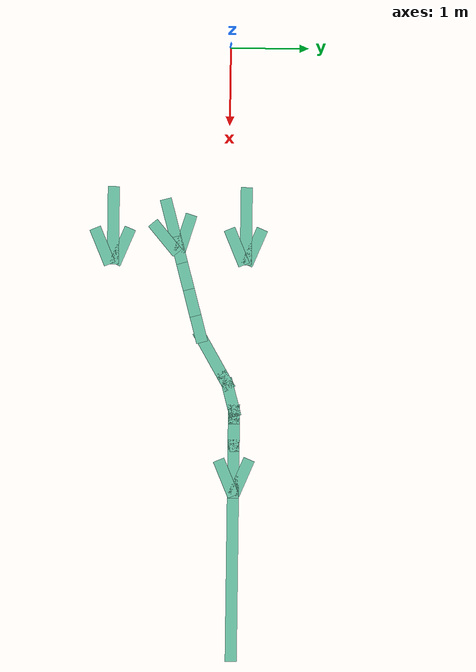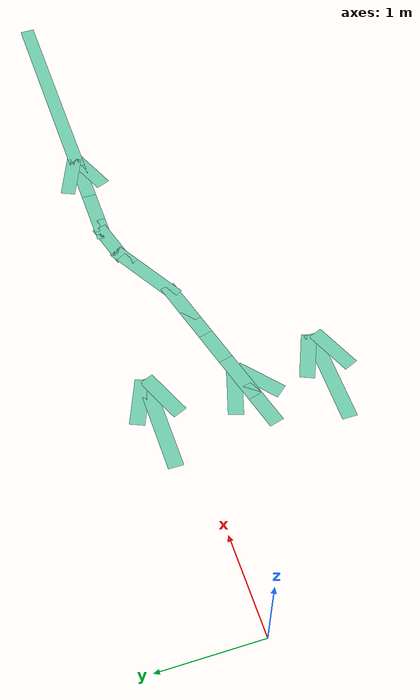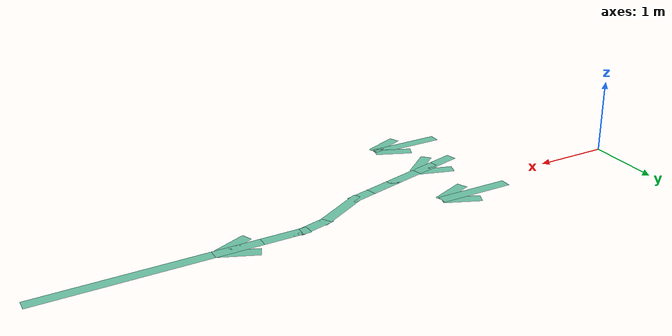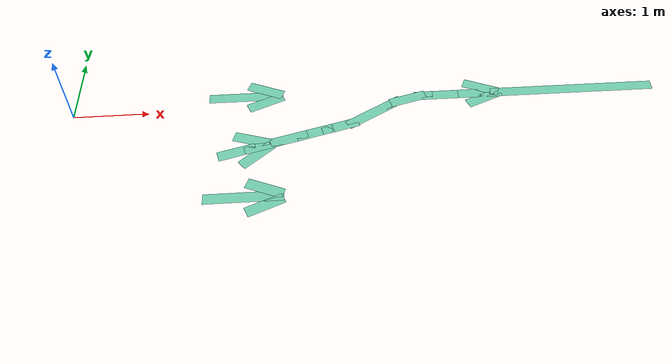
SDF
<sdf version="1.6">
 <model name="path_test">
  <link name="Wall_30_clone_clone_0_clone_clone_0_clone_clone">
   <pose>2.55639 0.336606 0 0 0 -0.4</pose>
   <inertial>
    <mass>1</mass>
    <inertia><ixx>1</ixx><ixy>0</ixy><ixz>0</ixz><iyy>1</iyy><iyz>0</iyz><izz>1</izz></inertia>
   </inertial>
   <visual name="Wall_30_Visual">
    <geometry><box><size>0.5 0.15 0</size></box></geometry>
    <material>
     <script><uri>file://media/materials/scripts/gazebo.material</uri><name>Gazebo/Grey</name></script>
     <ambient>0.435 0.796 0.675 1</ambient>
     <shader type="pixel"><normal_map>__default__</normal_map></shader>
     <diffuse>0.7 0.7 0.7 1</diffuse>
     <specular>0.01 0.01 0.01 1</specular>
     <emissive>0 0 0 1</emissive>
    </material>
    <meta><layer>0</layer></meta>
   </visual>
   <collision name="Wall_30_Collision">
    <geometry><box><size>0.5 0.15 0</size></box></geometry>
    <surface>
     <friction>
      <ode><mu>1</mu><mu2>1</mu2><fdir1>0 0 0</fdir1><slip1>0</slip1><slip2>0</slip2></ode>
      <torsional>
       <coefficient>1</coefficient>
       <patch_radius>0</patch_radius>
       <surface_radius>0</surface_radius>
       <use_patch_radius>1</use_patch_radius>
       <ode><slip>0</slip></ode>
      </torsional>
     </friction>
     <bounce><restitution_coefficient>0</restitution_coefficient><threshold>1e+06</threshold></bounce>
     <contact>
      <collide_without_contact>0</collide_without_contact>
      <collide_without_contact_bitmask>1</collide_without_contact_bitmask>
      <collide_bitmask>1</collide_bitmask>
      <ode>
       <soft_cfm>0</soft_cfm>
       <soft_erp>0.2</soft_erp>
       <kp>1e+13</kp>
       <kd>1</kd>
       <max_vel>0.01</max_vel>
       <min_depth>0</min_depth>
      </ode>
      <bullet>
       <split_impulse>1</split_impulse>
       <split_impulse_penetration_threshold>-0.01</split_impulse_penetration_threshold>
       <soft_cfm>0</soft_cfm>
       <soft_erp>0.2</soft_erp>
       <kp>1e+13</kp>
       <kd>1</kd>
      </bullet>
     </contact>
    </surface>
   </collision>
  </link>
  <link name="Wall_30_clone_clone_0_clone_clone_clone_0_clone">
   <pose>2.56492 -1.35959 0 0 0 -0.4</pose>
   <inertial>
    <mass>1</mass>
    <inertia><ixx>1</ixx><ixy>0</ixy><ixz>0</ixz><iyy>1</iyy><iyz>0</iyz><izz>1</izz></inertia>
   </inertial>
   <visual name="Wall_30_Visual">
    <geometry><box><size>0.5 0.15 0</size></box></geometry>
    <material>
     <script><uri>file://media/materials/scripts/gazebo.material</uri><name>Gazebo/Grey</name></script>
     <ambient>0.435 0.796 0.675 1</ambient>
     <shader type="pixel"><normal_map>__default__</normal_map></shader>
     <diffuse>0.7 0.7 0.7 1</diffuse>
     <specular>0.01 0.01 0.01 1</specular>
     <emissive>0 0 0 1</emissive>
    </material>
    <meta><layer>0</layer></meta>
   </visual>
   <collision name="Wall_30_Collision">
    <geometry><box><size>0.5 0.15 0</size></box></geometry>
    <surface>
     <friction>
      <ode><mu>1</mu><mu2>1</mu2><fdir1>0 0 0</fdir1><slip1>0</slip1><slip2>0</slip2></ode>
      <torsional>
       <coefficient>1</coefficient>
       <patch_radius>0</patch_radius>
       <surface_radius>0</surface_radius>
       <use_patch_radius>1</use_patch_radius>
       <ode><slip>0</slip></ode>
      </torsional>
     </friction>
     <bounce><restitution_coefficient>0</restitution_coefficient><threshold>1e+06</threshold></bounce>
     <contact>
      <collide_without_contact>0</collide_without_contact>
      <collide_without_contact_bitmask>1</collide_without_contact_bitmask>
      <collide_bitmask>1</collide_bitmask>
      <ode>
       <soft_cfm>0</soft_cfm>
       <soft_erp>0.2</soft_erp>
       <kp>1e+13</kp>
       <kd>1</kd>
       <max_vel>0.01</max_vel>
       <min_depth>0</min_depth>
      </ode>
      <bullet>
       <split_impulse>1</split_impulse>
       <split_impulse_penetration_threshold>-0.01</split_impulse_penetration_threshold>
       <soft_cfm>0</soft_cfm>
       <soft_erp>0.2</soft_erp>
       <kp>1e+13</kp>
       <kd>1</kd>
      </bullet>
     </contact>
    </surface>
   </collision>
  </link>
  <link name="Wall_30_clone_clone_0_clone_clone_clone_clone">
   <pose>5.51526 0.205404 0 0 0 -0.4</pose>
   <inertial>
    <mass>1</mass>
    <inertia><ixx>1</ixx><ixy>0</ixy><ixz>0</ixz><iyy>1</iyy><iyz>0</iyz><izz>1</izz></inertia>
   </inertial>
   <visual name="Wall_30_Visual">
    <geometry><box><size>0.5 0.15 0</size></box></geometry>
    <material>
     <script><uri>file://media/materials/scripts/gazebo.material</uri><name>Gazebo/Grey</name></script>
     <ambient>0.435 0.796 0.675 1</ambient>
     <shader type="pixel"><normal_map>__default__</normal_map></shader>
     <diffuse>0.7 0.7 0.7 1</diffuse>
     <specular>0.01 0.01 0.01 1</specular>
     <emissive>0 0 0 1</emissive>
    </material>
    <meta><layer>0</layer></meta>
   </visual>
   <collision name="Wall_30_Collision">
    <geometry><box><size>0.5 0.15 0</size></box></geometry>
    <surface>
     <friction>
      <ode><mu>1</mu><mu2>1</mu2><fdir1>0 0 0</fdir1><slip1>0</slip1><slip2>0</slip2></ode>
      <torsional>
       <coefficient>1</coefficient>
       <patch_radius>0</patch_radius>
       <surface_radius>0</surface_radius>
       <use_patch_radius>1</use_patch_radius>
       <ode><slip>0</slip></ode>
      </torsional>
     </friction>
     <bounce><restitution_coefficient>0</restitution_coefficient><threshold>1e+06</threshold></bounce>
     <contact>
      <collide_without_contact>0</collide_without_contact>
      <collide_without_contact_bitmask>1</collide_without_contact_bitmask>
      <collide_bitmask>1</collide_bitmask>
      <ode>
       <soft_cfm>0</soft_cfm>
       <soft_erp>0.2</soft_erp>
       <kp>1e+13</kp>
       <kd>1</kd>
       <max_vel>0.01</max_vel>
       <min_depth>0</min_depth>
      </ode>
      <bullet>
       <split_impulse>1</split_impulse>
       <split_impulse_penetration_threshold>-0.01</split_impulse_penetration_threshold>
       <soft_cfm>0</soft_cfm>
       <soft_erp>0.2</soft_erp>
       <kp>1e+13</kp>
       <kd>1</kd>
      </bullet>
     </contact>
    </surface>
   </collision>
  </link>
  <link name="Wall_30_clone_clone_clone_clone_0_clone">
   <pose>2.55934 0.108105 0 0 -0 0.4</pose>
   <inertial>
    <mass>1</mass>
    <inertia><ixx>1</ixx><ixy>0</ixy><ixz>0</ixz><iyy>1</iyy><iyz>0</iyz><izz>1</izz></inertia>
   </inertial>
   <visual name="Wall_30_Visual">
    <geometry><box><size>0.5 0.15 0</size></box></geometry>
    <material>
     <script><uri>file://media/materials/scripts/gazebo.material</uri><name>Gazebo/Grey</name></script>
     <ambient>0.435 0.796 0.675 1</ambient>
     <shader type="pixel"><normal_map>__default__</normal_map></shader>
     <diffuse>0.7 0.7 0.7 1</diffuse>
     <specular>0.01 0.01 0.01 1</specular>
     <emissive>0 0 0 1</emissive>
    </material>
    <meta><layer>0</layer></meta>
   </visual>
   <collision name="Wall_30_Collision">
    <geometry><box><size>0.5 0.15 0</size></box></geometry>
    <surface>
     <friction>
      <ode><mu>1</mu><mu2>1</mu2><fdir1>0 0 0</fdir1><slip1>0</slip1><slip2>0</slip2></ode>
      <torsional>
       <coefficient>1</coefficient>
       <patch_radius>0</patch_radius>
       <surface_radius>0</surface_radius>
       <use_patch_radius>1</use_patch_radius>
       <ode><slip>0</slip></ode>
      </torsional>
     </friction>
     <bounce><restitution_coefficient>0</restitution_coefficient><threshold>1e+06</threshold></bounce>
     <contact>
      <collide_without_contact>0</collide_without_contact>
      <collide_without_contact_bitmask>1</collide_without_contact_bitmask>
      <collide_bitmask>1</collide_bitmask>
      <ode>
       <soft_cfm>0</soft_cfm>
       <soft_erp>0.2</soft_erp>
       <kp>1e+13</kp>
       <kd>1</kd>
       <max_vel>0.01</max_vel>
       <min_depth>0</min_depth>
      </ode>
      <bullet>
       <split_impulse>1</split_impulse>
       <split_impulse_penetration_threshold>-0.01</split_impulse_penetration_threshold>
       <soft_cfm>0</soft_cfm>
       <soft_erp>0.2</soft_erp>
       <kp>1e+13</kp>
       <kd>1</kd>
      </bullet>
     </contact>
    </surface>
   </collision>
  </link>
  <link name="Wall_30_clone_clone_clone_clone_clone_0_clone">
   <pose>2.56822 -1.61865 0 0 -0 0.4</pose>
   <inertial>
    <mass>1</mass>
    <inertia><ixx>1</ixx><ixy>0</ixy><ixz>0</ixz><iyy>1</iyy><iyz>0</iyz><izz>1</izz></inertia>
   </inertial>
   <visual name="Wall_30_Visual">
    <geometry><box><size>0.5 0.15 0</size></box></geometry>
    <material>
     <script><uri>file://media/materials/scripts/gazebo.material</uri><name>Gazebo/Grey</name></script>
     <ambient>0.435 0.796 0.675 1</ambient>
     <shader type="pixel"><normal_map>__default__</normal_map></shader>
     <diffuse>0.7 0.7 0.7 1</diffuse>
     <specular>0.01 0.01 0.01 1</specular>
     <emissive>0 0 0 1</emissive>
    </material>
    <meta><layer>0</layer></meta>
   </visual>
   <collision name="Wall_30_Collision">
    <geometry><box><size>0.5 0.15 0</size></box></geometry>
    <surface>
     <friction>
      <ode><mu>1</mu><mu2>1</mu2><fdir1>0 0 0</fdir1><slip1>0</slip1><slip2>0</slip2></ode>
      <torsional>
       <coefficient>1</coefficient>
       <patch_radius>0</patch_radius>
       <surface_radius>0</surface_radius>
       <use_patch_radius>1</use_patch_radius>
       <ode><slip>0</slip></ode>
      </torsional>
     </friction>
     <bounce><restitution_coefficient>0</restitution_coefficient><threshold>1e+06</threshold></bounce>
     <contact>
      <collide_without_contact>0</collide_without_contact>
      <collide_without_contact_bitmask>1</collide_without_contact_bitmask>
      <collide_bitmask>1</collide_bitmask>
      <ode>
       <soft_cfm>0</soft_cfm>
       <soft_erp>0.2</soft_erp>
       <kp>1e+13</kp>
       <kd>1</kd>
       <max_vel>0.01</max_vel>
       <min_depth>0</min_depth>
      </ode>
      <bullet>
       <split_impulse>1</split_impulse>
       <split_impulse_penetration_threshold>-0.01</split_impulse_penetration_threshold>
       <soft_cfm>0</soft_cfm>
       <soft_erp>0.2</soft_erp>
       <kp>1e+13</kp>
       <kd>1</kd>
      </bullet>
     </contact>
    </surface>
   </collision>
  </link>
  <link name="Wall_30_clone_clone_clone_clone_clone_clone">
   <pose>5.52735 0.006886 0 0 -0 0.4</pose>
   <inertial>
    <mass>1</mass>
    <inertia><ixx>1</ixx><ixy>0</ixy><ixz>0</ixz><iyy>1</iyy><iyz>0</iyz><izz>1</izz></inertia>
   </inertial>
   <visual name="Wall_30_Visual">
    <geometry><box><size>0.5 0.15 0</size></box></geometry>
    <material>
     <script><uri>file://media/materials/scripts/gazebo.material</uri><name>Gazebo/Grey</name></script>
     <ambient>0.435 0.796 0.675 1</ambient>
     <shader type="pixel"><normal_map>__default__</normal_map></shader>
     <diffuse>0.7 0.7 0.7 1</diffuse>
     <specular>0.01 0.01 0.01 1</specular>
     <emissive>0 0 0 1</emissive>
    </material>
    <meta><layer>0</layer></meta>
   </visual>
   <collision name="Wall_30_Collision">
    <geometry><box><size>0.5 0.15 0</size></box></geometry>
    <surface>
     <friction>
      <ode><mu>1</mu><mu2>1</mu2><fdir1>0 0 0</fdir1><slip1>0</slip1><slip2>0</slip2></ode>
      <torsional>
       <coefficient>1</coefficient>
       <patch_radius>0</patch_radius>
       <surface_radius>0</surface_radius>
       <use_patch_radius>1</use_patch_radius>
       <ode><slip>0</slip></ode>
      </torsional>
     </friction>
     <bounce><restitution_coefficient>0</restitution_coefficient><threshold>1e+06</threshold></bounce>
     <contact>
      <collide_without_contact>0</collide_without_contact>
      <collide_without_contact_bitmask>1</collide_without_contact_bitmask>
      <collide_bitmask>1</collide_bitmask>
      <ode>
       <soft_cfm>0</soft_cfm>
       <soft_erp>0.2</soft_erp>
       <kp>1e+13</kp>
       <kd>1</kd>
       <max_vel>0.01</max_vel>
       <min_depth>0</min_depth>
      </ode>
      <bullet>
       <split_impulse>1</split_impulse>
       <split_impulse_penetration_threshold>-0.01</split_impulse_penetration_threshold>
       <soft_cfm>0</soft_cfm>
       <soft_erp>0.2</soft_erp>
       <kp>1e+13</kp>
       <kd>1</kd>
      </bullet>
     </contact>
    </surface>
   </collision>
  </link>
  <link name="Wall_30_clone_clone_clone_clone_clone_clone_clone">
   <pose>2.45221 -0.812896 0 0 -0 0.7</pose>
   <inertial>
    <mass>1</mass>
    <inertia><ixx>1</ixx><ixy>0</ixy><ixz>0</ixz><iyy>1</iyy><iyz>0</iyz><izz>1</izz></inertia>
   </inertial>
   <visual name="Wall_30_Visual">
    <geometry><box><size>0.5 0.15 0</size></box></geometry>
    <material>
     <script><uri>file://media/materials/scripts/gazebo.material</uri><name>Gazebo/Grey</name></script>
     <ambient>0.435 0.796 0.675 1</ambient>
     <shader type="pixel"><normal_map>__default__</normal_map></shader>
     <diffuse>0.7 0.7 0.7 1</diffuse>
     <specular>0.01 0.01 0.01 1</specular>
     <emissive>0 0 0 1</emissive>
    </material>
    <meta><layer>0</layer></meta>
   </visual>
   <collision name="Wall_30_Collision">
    <geometry><box><size>0.5 0.15 0</size></box></geometry>
    <surface>
     <friction>
      <ode><mu>1</mu><mu2>1</mu2><fdir1>0 0 0</fdir1><slip1>0</slip1><slip2>0</slip2></ode>
      <torsional>
       <coefficient>1</coefficient>
       <patch_radius>0</patch_radius>
       <surface_radius>0</surface_radius>
       <use_patch_radius>1</use_patch_radius>
       <ode><slip>0</slip></ode>
      </torsional>
     </friction>
     <bounce><restitution_coefficient>0</restitution_coefficient><threshold>1e+06</threshold></bounce>
     <contact>
      <collide_without_contact>0</collide_without_contact>
      <collide_without_contact_bitmask>1</collide_without_contact_bitmask>
      <collide_bitmask>1</collide_bitmask>
      <ode>
       <soft_cfm>0</soft_cfm>
       <soft_erp>0.2</soft_erp>
       <kp>1e+13</kp>
       <kd>1</kd>
       <max_vel>0.01</max_vel>
       <min_depth>0</min_depth>
      </ode>
      <bullet>
       <split_impulse>1</split_impulse>
       <split_impulse_penetration_threshold>-0.01</split_impulse_penetration_threshold>
       <soft_cfm>0</soft_cfm>
       <soft_erp>0.2</soft_erp>
       <kp>1e+13</kp>
       <kd>1</kd>
      </bullet>
     </contact>
    </surface>
   </collision>
  </link>
  <link name="Wall_30_clone_clone_clone_clone_clone_clone_clone_0">
   <pose>2.38992 -0.552326 0 0 0 -0.3</pose>
   <inertial>
    <mass>1</mass>
    <inertia><ixx>1</ixx><ixy>0</ixy><ixz>0</ixz><iyy>1</iyy><iyz>0</iyz><izz>1</izz></inertia>
   </inertial>
   <visual name="Wall_30_Visual">
    <geometry><box><size>0.5 0.15 0</size></box></geometry>
    <material>
     <script><uri>file://media/materials/scripts/gazebo.material</uri><name>Gazebo/Grey</name></script>
     <ambient>0.435 0.796 0.675 1</ambient>
     <shader type="pixel"><normal_map>__default__</normal_map></shader>
     <diffuse>0.7 0.7 0.7 1</diffuse>
     <specular>0.01 0.01 0.01 1</specular>
     <emissive>0 0 0 1</emissive>
    </material>
    <meta><layer>0</layer></meta>
   </visual>
   <collision name="Wall_30_Collision">
    <geometry><box><size>0.5 0.15 0</size></box></geometry>
    <surface>
     <friction>
      <ode><mu>1</mu><mu2>1</mu2><fdir1>0 0 0</fdir1><slip1>0</slip1><slip2>0</slip2></ode>
      <torsional>
       <coefficient>1</coefficient>
       <patch_radius>0</patch_radius>
       <surface_radius>0</surface_radius>
       <use_patch_radius>1</use_patch_radius>
       <ode><slip>0</slip></ode>
      </torsional>
     </friction>
     <bounce><restitution_coefficient>0</restitution_coefficient><threshold>1e+06</threshold></bounce>
     <contact>
      <collide_without_contact>0</collide_without_contact>
      <collide_without_contact_bitmask>1</collide_without_contact_bitmask>
      <collide_bitmask>1</collide_bitmask>
      <ode>
       <soft_cfm>0</soft_cfm>
       <soft_erp>0.2</soft_erp>
       <kp>1e+13</kp>
       <kd>1</kd>
       <max_vel>0.01</max_vel>
       <min_depth>0</min_depth>
      </ode>
      <bullet>
       <split_impulse>1</split_impulse>
       <split_impulse_penetration_threshold>-0.01</split_impulse_penetration_threshold>
       <soft_cfm>0</soft_cfm>
       <soft_erp>0.2</soft_erp>
       <kp>1e+13</kp>
       <kd>1</kd>
      </bullet>
     </contact>
    </surface>
   </collision>
  </link>
  <link name="Wall_34_clone_clone_0_clone_clone">
   <pose>2.29032 0.225762 0 0 -0 0</pose>
   <visual name="Wall_34_Visual">
    <geometry><box><size>1 0.15 0</size></box></geometry>
    <material>
     <script><uri>file://media/materials/scripts/gazebo.material</uri><name>Gazebo/Grey</name></script>
     <ambient>0.435294 0.796078 0.67451 1</ambient>
     <shader type="pixel"/>
    </material>
    <meta><layer>0</layer></meta>
   </visual>
   <collision name="Wall_34_Collision">
    <geometry><box><size>1 0.15 0</size></box></geometry>
    <surface>
     <friction>
      <ode><mu>1</mu><mu2>1</mu2><fdir1>0 0 0</fdir1><slip1>0</slip1><slip2>0</slip2></ode>
      <torsional>
       <coefficient>1</coefficient>
       <patch_radius>0</patch_radius>
       <surface_radius>0</surface_radius>
       <use_patch_radius>1</use_patch_radius>
       <ode><slip>0</slip></ode>
      </torsional>
     </friction>
     <bounce><restitution_coefficient>0</restitution_coefficient><threshold>1e+06</threshold></bounce>
     <contact>
      <collide_without_contact>0</collide_without_contact>
      <collide_without_contact_bitmask>1</collide_without_contact_bitmask>
      <collide_bitmask>1</collide_bitmask>
      <ode>
       <soft_cfm>0</soft_cfm>
       <soft_erp>0.2</soft_erp>
       <kp>1e+13</kp>
       <kd>1</kd>
       <max_vel>0.01</max_vel>
       <min_depth>0</min_depth>
      </ode>
      <bullet>
       <split_impulse>1</split_impulse>
       <split_impulse_penetration_threshold>-0.01</split_impulse_penetration_threshold>
       <soft_cfm>0</soft_cfm>
       <soft_erp>0.2</soft_erp>
       <kp>1e+13</kp>
       <kd>1</kd>
      </bullet>
     </contact>
    </surface>
   </collision>
  </link>
  <link name="Wall_34_clone_clone_clone_clone">
   <pose>2.29981 -1.48217 0 0 -0 0</pose>
   <visual name="Wall_34_Visual">
    <geometry><box><size>1 0.15 0</size></box></geometry>
    <material>
     <script><uri>file://media/materials/scripts/gazebo.material</uri><name>Gazebo/Grey</name></script>
     <ambient>0.435294 0.796078 0.67451 1</ambient>
     <shader type="pixel"/>
    </material>
    <meta><layer>0</layer></meta>
   </visual>
   <collision name="Wall_34_Collision">
    <geometry><box><size>1 0.15 0</size></box></geometry>
    <surface>
     <friction>
      <ode><mu>1</mu><mu2>1</mu2><fdir1>0 0 0</fdir1><slip1>0</slip1><slip2>0</slip2></ode>
      <torsional>
       <coefficient>1</coefficient>
       <patch_radius>0</patch_radius>
       <surface_radius>0</surface_radius>
       <use_patch_radius>1</use_patch_radius>
       <ode><slip>0</slip></ode>
      </torsional>
     </friction>
     <bounce><restitution_coefficient>0</restitution_coefficient><threshold>1e+06</threshold></bounce>
     <contact>
      <collide_without_contact>0</collide_without_contact>
      <collide_without_contact_bitmask>1</collide_without_contact_bitmask>
      <collide_bitmask>1</collide_bitmask>
      <ode>
       <soft_cfm>0</soft_cfm>
       <soft_erp>0.2</soft_erp>
       <kp>1e+13</kp>
       <kd>1</kd>
       <max_vel>0.01</max_vel>
       <min_depth>0</min_depth>
      </ode>
      <bullet>
       <split_impulse>1</split_impulse>
       <split_impulse_penetration_threshold>-0.01</split_impulse_penetration_threshold>
       <soft_cfm>0</soft_cfm>
       <soft_erp>0.2</soft_erp>
       <kp>1e+13</kp>
       <kd>1</kd>
      </bullet>
     </contact>
    </surface>
   </collision>
  </link>
  <link name="Wall_36">
   <pose>2.19447 -0.748507 0 0 -0 0.261799</pose>
   <visual name="Wall_36_Visual">
    <geometry><box><size>0.5 0.15 0</size></box></geometry>
    <material>
     <script><uri>file://media/materials/scripts/gazebo.material</uri><name>Gazebo/Grey</name></script>
     <ambient>0.435294 0.796078 0.67451 1</ambient>
     <shader type="pixel"/>
    </material>
    <meta><layer>0</layer></meta>
   </visual>
   <collision name="Wall_36_Collision">
    <geometry><box><size>0.5 0.15 0</size></box></geometry>
    <surface>
     <friction>
      <ode><mu>1</mu><mu2>1</mu2><fdir1>0 0 0</fdir1><slip1>0</slip1><slip2>0</slip2></ode>
      <torsional>
       <coefficient>1</coefficient>
       <patch_radius>0</patch_radius>
       <surface_radius>0</surface_radius>
       <use_patch_radius>1</use_patch_radius>
       <ode><slip>0</slip></ode>
      </torsional>
     </friction>
     <bounce><restitution_coefficient>0</restitution_coefficient><threshold>1e+06</threshold></bounce>
     <contact>
      <collide_without_contact>0</collide_without_contact>
      <collide_without_contact_bitmask>1</collide_without_contact_bitmask>
      <collide_bitmask>1</collide_bitmask>
      <ode>
       <soft_cfm>0</soft_cfm>
       <soft_erp>0.2</soft_erp>
       <kp>1e+13</kp>
       <kd>1</kd>
       <max_vel>0.01</max_vel>
       <min_depth>0</min_depth>
      </ode>
      <bullet>
       <split_impulse>1</split_impulse>
       <split_impulse_penetration_threshold>-0.01</split_impulse_penetration_threshold>
       <soft_cfm>0</soft_cfm>
       <soft_erp>0.2</soft_erp>
       <kp>1e+13</kp>
       <kd>1</kd>
      </bullet>
     </contact>
    </surface>
   </collision>
  </link>
  <link name="Wall_37">
   <pose>2.53254 -0.65792 0 0 -0 0.261799</pose>
   <visual name="Wall_37_Visual">
    <geometry><box><size>0.5 0.15 0</size></box></geometry>
    <material>
     <script><uri>file://media/materials/scripts/gazebo.material</uri><name>Gazebo/Grey</name></script>
     <ambient>0.435294 0.796078 0.67451 1</ambient>
     <shader type="pixel"/>
    </material>
    <meta><layer>0</layer></meta>
   </visual>
   <collision name="Wall_37_Collision">
    <geometry><box><size>0.5 0.15 0</size></box></geometry>
    <surface>
     <friction>
      <ode><mu>1</mu><mu2>1</mu2><fdir1>0 0 0</fdir1><slip1>0</slip1><slip2>0</slip2></ode>
      <torsional>
       <coefficient>1</coefficient>
       <patch_radius>0</patch_radius>
       <surface_radius>0</surface_radius>
       <use_patch_radius>1</use_patch_radius>
       <ode><slip>0</slip></ode>
      </torsional>
     </friction>
     <bounce><restitution_coefficient>0</restitution_coefficient><threshold>1e+06</threshold></bounce>
     <contact>
      <collide_without_contact>0</collide_without_contact>
      <collide_without_contact_bitmask>1</collide_without_contact_bitmask>
      <collide_bitmask>1</collide_bitmask>
      <ode>
       <soft_cfm>0</soft_cfm>
       <soft_erp>0.2</soft_erp>
       <kp>1e+13</kp>
       <kd>1</kd>
       <max_vel>0.01</max_vel>
       <min_depth>0</min_depth>
      </ode>
      <bullet>
       <split_impulse>1</split_impulse>
       <split_impulse_penetration_threshold>-0.01</split_impulse_penetration_threshold>
       <soft_cfm>0</soft_cfm>
       <soft_erp>0.2</soft_erp>
       <kp>1e+13</kp>
       <kd>1</kd>
      </bullet>
     </contact>
    </surface>
   </collision>
  </link>
  <link name="Wall_38">
   <pose>2.87062 -0.567333 0 0 -0 0.261799</pose>
   <visual name="Wall_38_Visual">
    <geometry><box><size>0.5 0.15 0</size></box></geometry>
    <material>
     <script><uri>file://media/materials/scripts/gazebo.material</uri><name>Gazebo/Grey</name></script>
     <ambient>0.435294 0.796078 0.67451 1</ambient>
     <shader type="pixel"/>
    </material>
    <meta><layer>0</layer></meta>
   </visual>
   <collision name="Wall_38_Collision">
    <geometry><box><size>0.5 0.15 0</size></box></geometry>
    <surface>
     <friction>
      <ode><mu>1</mu><mu2>1</mu2><fdir1>0 0 0</fdir1><slip1>0</slip1><slip2>0</slip2></ode>
      <torsional>
       <coefficient>1</coefficient>
       <patch_radius>0</patch_radius>
       <surface_radius>0</surface_radius>
       <use_patch_radius>1</use_patch_radius>
       <ode><slip>0</slip></ode>
      </torsional>
     </friction>
     <bounce><restitution_coefficient>0</restitution_coefficient><threshold>1e+06</threshold></bounce>
     <contact>
      <collide_without_contact>0</collide_without_contact>
      <collide_without_contact_bitmask>1</collide_without_contact_bitmask>
      <collide_bitmask>1</collide_bitmask>
      <ode>
       <soft_cfm>0</soft_cfm>
       <soft_erp>0.2</soft_erp>
       <kp>1e+13</kp>
       <kd>1</kd>
       <max_vel>0.01</max_vel>
       <min_depth>0</min_depth>
      </ode>
      <bullet>
       <split_impulse>1</split_impulse>
       <split_impulse_penetration_threshold>-0.01</split_impulse_penetration_threshold>
       <soft_cfm>0</soft_cfm>
       <soft_erp>0.2</soft_erp>
       <kp>1e+13</kp>
       <kd>1</kd>
      </bullet>
     </contact>
    </surface>
   </collision>
  </link>
  <link name="Wall_39">
   <pose>3.20869 -0.476747 0 0 -0 0.261799</pose>
   <visual name="Wall_39_Visual">
    <geometry><box><size>0.5 0.15 0</size></box></geometry>
    <material>
     <script><uri>file://media/materials/scripts/gazebo.material</uri><name>Gazebo/Grey</name></script>
     <ambient>0.435294 0.796078 0.67451 1</ambient>
     <shader type="pixel"/>
    </material>
    <meta><layer>0</layer></meta>
   </visual>
   <collision name="Wall_39_Collision">
    <geometry><box><size>0.5 0.15 0</size></box></geometry>
    <surface>
     <friction>
      <ode><mu>1</mu><mu2>1</mu2><fdir1>0 0 0</fdir1><slip1>0</slip1><slip2>0</slip2></ode>
      <torsional>
       <coefficient>1</coefficient>
       <patch_radius>0</patch_radius>
       <surface_radius>0</surface_radius>
       <use_patch_radius>1</use_patch_radius>
       <ode><slip>0</slip></ode>
      </torsional>
     </friction>
     <bounce><restitution_coefficient>0</restitution_coefficient><threshold>1e+06</threshold></bounce>
     <contact>
      <collide_without_contact>0</collide_without_contact>
      <collide_without_contact_bitmask>1</collide_without_contact_bitmask>
      <collide_bitmask>1</collide_bitmask>
      <ode>
       <soft_cfm>0</soft_cfm>
       <soft_erp>0.2</soft_erp>
       <kp>1e+13</kp>
       <kd>1</kd>
       <max_vel>0.01</max_vel>
       <min_depth>0</min_depth>
      </ode>
      <bullet>
       <split_impulse>1</split_impulse>
       <split_impulse_penetration_threshold>-0.01</split_impulse_penetration_threshold>
       <soft_cfm>0</soft_cfm>
       <soft_erp>0.2</soft_erp>
       <kp>1e+13</kp>
       <kd>1</kd>
      </bullet>
     </contact>
    </surface>
   </collision>
  </link>
  <link name="Wall_40">
   <pose>3.54676 -0.38616 0 0 -0 0.261799</pose>
   <visual name="Wall_40_Visual">
    <geometry><box><size>0.5 0.15 0</size></box></geometry>
    <material>
     <script><uri>file://media/materials/scripts/gazebo.material</uri><name>Gazebo/Grey</name></script>
     <ambient>0.435294 0.796078 0.67451 1</ambient>
     <shader type="pixel"/>
    </material>
    <meta><layer>0</layer></meta>
   </visual>
   <collision name="Wall_40_Collision">
    <geometry><box><size>0.5 0.15 0</size></box></geometry>
    <surface>
     <friction>
      <ode><mu>1</mu><mu2>1</mu2><fdir1>0 0 0</fdir1><slip1>0</slip1><slip2>0</slip2></ode>
      <torsional>
       <coefficient>1</coefficient>
       <patch_radius>0</patch_radius>
       <surface_radius>0</surface_radius>
       <use_patch_radius>1</use_patch_radius>
       <ode><slip>0</slip></ode>
      </torsional>
     </friction>
     <bounce><restitution_coefficient>0</restitution_coefficient><threshold>1e+06</threshold></bounce>
     <contact>
      <collide_without_contact>0</collide_without_contact>
      <collide_without_contact_bitmask>1</collide_without_contact_bitmask>
      <collide_bitmask>1</collide_bitmask>
      <ode>
       <soft_cfm>0</soft_cfm>
       <soft_erp>0.2</soft_erp>
       <kp>1e+13</kp>
       <kd>1</kd>
       <max_vel>0.01</max_vel>
       <min_depth>0</min_depth>
      </ode>
      <bullet>
       <split_impulse>1</split_impulse>
       <split_impulse_penetration_threshold>-0.01</split_impulse_penetration_threshold>
       <soft_cfm>0</soft_cfm>
       <soft_erp>0.2</soft_erp>
       <kp>1e+13</kp>
       <kd>1</kd>
      </bullet>
     </contact>
    </surface>
   </collision>
  </link>
  <link name="Wall_41">
   <pose>3.97561 -0.190867 0 0 -0 0.523599</pose>
   <visual name="Wall_41_Visual">
    <geometry><box><size>0.75 0.15 0</size></box></geometry>
    <material>
     <script><uri>file://media/materials/scripts/gazebo.material</uri><name>Gazebo/Grey</name></script>
     <ambient>0.435294 0.796078 0.67451 1</ambient>
     <shader type="pixel"/>
    </material>
    <meta><layer>0</layer></meta>
   </visual>
   <collision name="Wall_41_Collision">
    <geometry><box><size>0.75 0.15 0</size></box></geometry>
    <surface>
     <friction>
      <ode><mu>1</mu><mu2>1</mu2><fdir1>0 0 0</fdir1><slip1>0</slip1><slip2>0</slip2></ode>
      <torsional>
       <coefficient>1</coefficient>
       <patch_radius>0</patch_radius>
       <surface_radius>0</surface_radius>
       <use_patch_radius>1</use_patch_radius>
       <ode><slip>0</slip></ode>
      </torsional>
     </friction>
     <bounce><restitution_coefficient>0</restitution_coefficient><threshold>1e+06</threshold></bounce>
     <contact>
      <collide_without_contact>0</collide_without_contact>
      <collide_without_contact_bitmask>1</collide_without_contact_bitmask>
      <collide_bitmask>1</collide_bitmask>
      <ode>
       <soft_cfm>0</soft_cfm>
       <soft_erp>0.2</soft_erp>
       <kp>1e+13</kp>
       <kd>1</kd>
       <max_vel>0.01</max_vel>
       <min_depth>0</min_depth>
      </ode>
      <bullet>
       <split_impulse>1</split_impulse>
       <split_impulse_penetration_threshold>-0.01</split_impulse_penetration_threshold>
       <soft_cfm>0</soft_cfm>
       <soft_erp>0.2</soft_erp>
       <kp>1e+13</kp>
       <kd>1</kd>
      </bullet>
     </contact>
    </surface>
   </collision>
  </link>
  <link name="Wall_42">
   <pose>4.27872 -0.015867 0 0 -0 0.523599</pose>
   <visual name="Wall_42_Visual">
    <geometry><box><size>0.25 0.15 0</size></box></geometry>
    <material>
     <script><uri>file://media/materials/scripts/gazebo.material</uri><name>Gazebo/Grey</name></script>
     <ambient>0.435294 0.796078 0.67451 1</ambient>
     <shader type="pixel"/>
    </material>
    <meta><layer>0</layer></meta>
   </visual>
   <collision name="Wall_42_Collision">
    <geometry><box><size>0.25 0.15 0</size></box></geometry>
    <surface>
     <friction>
      <ode><mu>1</mu><mu2>1</mu2><fdir1>0 0 0</fdir1><slip1>0</slip1><slip2>0</slip2></ode>
      <torsional>
       <coefficient>1</coefficient>
       <patch_radius>0</patch_radius>
       <surface_radius>0</surface_radius>
       <use_patch_radius>1</use_patch_radius>
       <ode><slip>0</slip></ode>
      </torsional>
     </friction>
     <bounce><restitution_coefficient>0</restitution_coefficient><threshold>1e+06</threshold></bounce>
     <contact>
      <collide_without_contact>0</collide_without_contact>
      <collide_without_contact_bitmask>1</collide_without_contact_bitmask>
      <collide_bitmask>1</collide_bitmask>
      <ode>
       <soft_cfm>0</soft_cfm>
       <soft_erp>0.2</soft_erp>
       <kp>1e+13</kp>
       <kd>1</kd>
       <max_vel>0.01</max_vel>
       <min_depth>0</min_depth>
      </ode>
      <bullet>
       <split_impulse>1</split_impulse>
       <split_impulse_penetration_threshold>-0.01</split_impulse_penetration_threshold>
       <soft_cfm>0</soft_cfm>
       <soft_erp>0.2</soft_erp>
       <kp>1e+13</kp>
       <kd>1</kd>
      </bullet>
     </contact>
    </surface>
   </collision>
  </link>
  <link name="Wall_43">
   <pose>4.49106 0.054427 0 0 -0 0.261799</pose>
   <visual name="Wall_43_Visual">
    <geometry><box><size>0.5 0.15 0</size></box></geometry>
    <material>
     <script><uri>file://media/materials/scripts/gazebo.material</uri><name>Gazebo/Grey</name></script>
     <ambient>0.435294 0.796078 0.67451 1</ambient>
     <shader type="pixel"/>
    </material>
    <meta><layer>0</layer></meta>
   </visual>
   <collision name="Wall_43_Collision">
    <geometry><box><size>0.5 0.15 0</size></box></geometry>
    <surface>
     <friction>
      <ode><mu>1</mu><mu2>1</mu2><fdir1>0 0 0</fdir1><slip1>0</slip1><slip2>0</slip2></ode>
      <torsional>
       <coefficient>1</coefficient>
       <patch_radius>0</patch_radius>
       <surface_radius>0</surface_radius>
       <use_patch_radius>1</use_patch_radius>
       <ode><slip>0</slip></ode>
      </torsional>
     </friction>
     <bounce><restitution_coefficient>0</restitution_coefficient><threshold>1e+06</threshold></bounce>
     <contact>
      <collide_without_contact>0</collide_without_contact>
      <collide_without_contact_bitmask>1</collide_without_contact_bitmask>
      <collide_bitmask>1</collide_bitmask>
      <ode>
       <soft_cfm>0</soft_cfm>
       <soft_erp>0.2</soft_erp>
       <kp>1e+13</kp>
       <kd>1</kd>
       <max_vel>0.01</max_vel>
       <min_depth>0</min_depth>
      </ode>
      <bullet>
       <split_impulse>1</split_impulse>
       <split_impulse_penetration_threshold>-0.01</split_impulse_penetration_threshold>
       <soft_cfm>0</soft_cfm>
       <soft_erp>0.2</soft_erp>
       <kp>1e+13</kp>
       <kd>1</kd>
      </bullet>
     </contact>
    </surface>
   </collision>
  </link>
  <link name="Wall_44">
   <pose>4.71009 0.09972 0 0 -0 0</pose>
   <visual name="Wall_44_Visual">
    <geometry><box><size>0.25 0.15 0</size></box></geometry>
    <material>
     <script><uri>file://media/materials/scripts/gazebo.material</uri><name>Gazebo/Grey</name></script>
     <ambient>0.435294 0.796078 0.67451 1</ambient>
     <shader type="pixel"/>
    </material>
    <meta><layer>0</layer></meta>
   </visual>
   <collision name="Wall_44_Collision">
    <geometry><box><size>0.25 0.15 0</size></box></geometry>
    <surface>
     <friction>
      <ode><mu>1</mu><mu2>1</mu2><fdir1>0 0 0</fdir1><slip1>0</slip1><slip2>0</slip2></ode>
      <torsional>
       <coefficient>1</coefficient>
       <patch_radius>0</patch_radius>
       <surface_radius>0</surface_radius>
       <use_patch_radius>1</use_patch_radius>
       <ode><slip>0</slip></ode>
      </torsional>
     </friction>
     <bounce><restitution_coefficient>0</restitution_coefficient><threshold>1e+06</threshold></bounce>
     <contact>
      <collide_without_contact>0</collide_without_contact>
      <collide_without_contact_bitmask>1</collide_without_contact_bitmask>
      <collide_bitmask>1</collide_bitmask>
      <ode>
       <soft_cfm>0</soft_cfm>
       <soft_erp>0.2</soft_erp>
       <kp>1e+13</kp>
       <kd>1</kd>
       <max_vel>0.01</max_vel>
       <min_depth>0</min_depth>
      </ode>
      <bullet>
       <split_impulse>1</split_impulse>
       <split_impulse_penetration_threshold>-0.01</split_impulse_penetration_threshold>
       <soft_cfm>0</soft_cfm>
       <soft_erp>0.2</soft_erp>
       <kp>1e+13</kp>
       <kd>1</kd>
      </bullet>
     </contact>
    </surface>
   </collision>
  </link>
  <link name="Wall_45">
   <pose>4.93509 0.09972 0 0 -0 0</pose>
   <visual name="Wall_45_Visual">
    <geometry><box><size>0.5 0.15 0</size></box></geometry>
    <material>
     <script><uri>file://media/materials/scripts/gazebo.material</uri><name>Gazebo/Grey</name></script>
     <ambient>0.435294 0.796078 0.67451 1</ambient>
     <shader type="pixel"/>
    </material>
    <meta><layer>0</layer></meta>
   </visual>
   <collision name="Wall_45_Collision">
    <geometry><box><size>0.5 0.15 0</size></box></geometry>
    <surface>
     <friction>
      <ode><mu>1</mu><mu2>1</mu2><fdir1>0 0 0</fdir1><slip1>0</slip1><slip2>0</slip2></ode>
      <torsional>
       <coefficient>1</coefficient>
       <patch_radius>0</patch_radius>
       <surface_radius>0</surface_radius>
       <use_patch_radius>1</use_patch_radius>
       <ode><slip>0</slip></ode>
      </torsional>
     </friction>
     <bounce><restitution_coefficient>0</restitution_coefficient><threshold>1e+06</threshold></bounce>
     <contact>
      <collide_without_contact>0</collide_without_contact>
      <collide_without_contact_bitmask>1</collide_without_contact_bitmask>
      <collide_bitmask>1</collide_bitmask>
      <ode>
       <soft_cfm>0</soft_cfm>
       <soft_erp>0.2</soft_erp>
       <kp>1e+13</kp>
       <kd>1</kd>
       <max_vel>0.01</max_vel>
       <min_depth>0</min_depth>
      </ode>
      <bullet>
       <split_impulse>1</split_impulse>
       <split_impulse_penetration_threshold>-0.01</split_impulse_penetration_threshold>
       <soft_cfm>0</soft_cfm>
       <soft_erp>0.2</soft_erp>
       <kp>1e+13</kp>
       <kd>1</kd>
      </bullet>
     </contact>
    </surface>
   </collision>
  </link>
  <link name="Wall_46">
   <pose>5.41009 0.09972 0 0 -0 0</pose>
   <visual name="Wall_46_Visual">
    <geometry><box><size>0.75 0.15 0</size></box></geometry>
    <material>
     <script><uri>file://media/materials/scripts/gazebo.material</uri><name>Gazebo/Grey</name></script>
     <ambient>0.435294 0.796078 0.67451 1</ambient>
     <shader type="pixel"/>
    </material>
    <meta><layer>0</layer></meta>
   </visual>
   <collision name="Wall_46_Collision">
    <geometry><box><size>0.75 0.15 0</size></box></geometry>
    <surface>
     <friction>
      <ode><mu>1</mu><mu2>1</mu2><fdir1>0 0 0</fdir1><slip1>0</slip1><slip2>0</slip2></ode>
      <torsional>
       <coefficient>1</coefficient>
       <patch_radius>0</patch_radius>
       <surface_radius>0</surface_radius>
       <use_patch_radius>1</use_patch_radius>
       <ode><slip>0</slip></ode>
      </torsional>
     </friction>
     <bounce><restitution_coefficient>0</restitution_coefficient><threshold>1e+06</threshold></bounce>
     <contact>
      <collide_without_contact>0</collide_without_contact>
      <collide_without_contact_bitmask>1</collide_without_contact_bitmask>
      <collide_bitmask>1</collide_bitmask>
      <ode>
       <soft_cfm>0</soft_cfm>
       <soft_erp>0.2</soft_erp>
       <kp>1e+13</kp>
       <kd>1</kd>
       <max_vel>0.01</max_vel>
       <min_depth>0</min_depth>
      </ode>
      <bullet>
       <split_impulse>1</split_impulse>
       <split_impulse_penetration_threshold>-0.01</split_impulse_penetration_threshold>
       <soft_cfm>0</soft_cfm>
       <soft_erp>0.2</soft_erp>
       <kp>1e+13</kp>
       <kd>1</kd>
      </bullet>
     </contact>
    </surface>
   </collision>
  </link>
  <link name="Wall_48">
   <pose>6.76009 0.09972 0 0 -0 0</pose>
   <visual name="Wall_48_Visual">
    <geometry><box><size>2.25 0.15 0</size></box></geometry>
    <material>
     <script><uri>file://media/materials/scripts/gazebo.material</uri><name>Gazebo/Grey</name></script>
     <ambient>0.435294 0.796078 0.67451 1</ambient>
     <shader type="pixel"/>
    </material>
    <meta><layer>0</layer></meta>
   </visual>
   <collision name="Wall_48_Collision">
    <geometry><box><size>2.25 0.15 0</size></box></geometry>
    <surface>
     <friction>
      <ode><mu>1</mu><mu2>1</mu2><fdir1>0 0 0</fdir1><slip1>0</slip1><slip2>0</slip2></ode>
      <torsional>
       <coefficient>1</coefficient>
       <patch_radius>0</patch_radius>
       <surface_radius>0</surface_radius>
       <use_patch_radius>1</use_patch_radius>
       <ode><slip>0</slip></ode>
      </torsional>
     </friction>
     <bounce><restitution_coefficient>0</restitution_coefficient><threshold>1e+06</threshold></bounce>
     <contact>
      <collide_without_contact>0</collide_without_contact>
      <collide_without_contact_bitmask>1</collide_without_contact_bitmask>
      <collide_bitmask>1</collide_bitmask>
      <ode>
       <soft_cfm>0</soft_cfm>
       <soft_erp>0.2</soft_erp>
       <kp>1e+13</kp>
       <kd>1</kd>
       <max_vel>0.01</max_vel>
       <min_depth>0</min_depth>
      </ode>
      <bullet>
       <split_impulse>1</split_impulse>
       <split_impulse_penetration_threshold>-0.01</split_impulse_penetration_threshold>
       <soft_cfm>0</soft_cfm>
       <soft_erp>0.2</soft_erp>
       <kp>1e+13</kp>
       <kd>1</kd>
      </bullet>
     </contact>
    </surface>
   </collision>
  </link>
  <static>1</static>
 </model>
</sdf>
